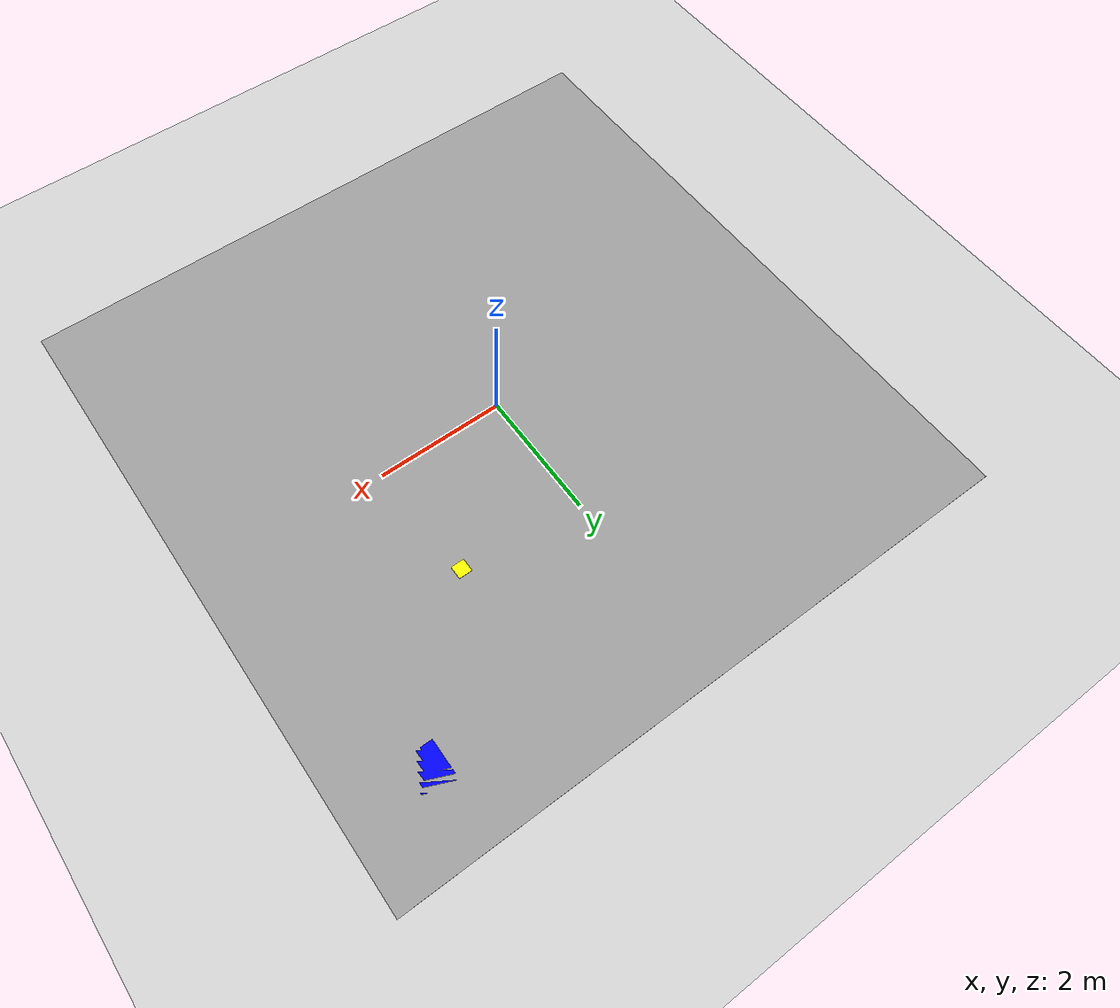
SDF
<?xml version="1.0" ?>
<sdf version="1.8">
  <world name="courier_grid_world">

    <!-- Ground plane -->
    <include>
      <uri>model://ground_plane</uri>
    </include>

    <!-- Light -->
    <include>
      <uri>model://sun</uri>
    </include>

    <!-- Grid visual: optional -->
    <model name="grid_visual">
      <pose>0 0 0 0 0 0</pose>
      <link name="link">
        <visual name="visual">
          <geometry>
            <box><size>10 10 0.01</size></box>
          </geometry>
          <material>
            <script>
              <uri>file://media/materials/scripts/gazebo.material</uri>
              <name>Gazebo/Grey</name>
            </script>
          </material>
        </visual>
      </link>
    </model>

    <!-- Start cell (green) -->
    <include>
      <uri>model://start_cell</uri>
      <pose>0 0 0 0 0 0</pose>
    </include>

    <!-- Goal cell (blue) -->
    <include>
      <uri>model://goal_cell</uri>
      <pose>4 4 0 0 0 0</pose>
    </include>

    <!-- AprilTag placeholder -->
    <include>
      <uri>model://apriltag</uri>
      <pose>2 2 0 0 0 0</pose>
    </include>

  </world>
</sdf>

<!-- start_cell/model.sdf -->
<sdf version="1.8">
  <model name="start_cell">
    <link name="link">
      <pose>0 0 0 0 0 0</pose>
      <visual name="vis">
        <geometry>
          <box><size>1 1 0.01</size></box>
        </geometry>
        <material><ambient>0 1 0 1</ambient></material>
      </visual>
    </link>
  </model>
</sdf>

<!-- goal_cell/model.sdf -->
<sdf version="1.8">
  <model name="goal_cell">
    <link name="link">
      <pose>0 0 0 0 0 0</pose>
      <visual name="vis">
        <geometry>
          <box><size>1 1 0.01</size></box>
        </geometry>
        <material><ambient>0 0 1 1</ambient></material>
      </visual>
    </link>
  </model>
</sdf>

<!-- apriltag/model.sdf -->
<sdf version="1.8">
  <model name="apriltag">
    <link name="link">
      <pose>0 0 0.5 0 0 0</pose>
      <visual name="vis">
        <geometry>
          <box><size>0.2 0.2 0.01</size></box>
        </geometry>
        <material><ambient>1 1 0 1</ambient></material>
      </visual>
    </link>
    <static>true</static>
  </model>
</sdf>
